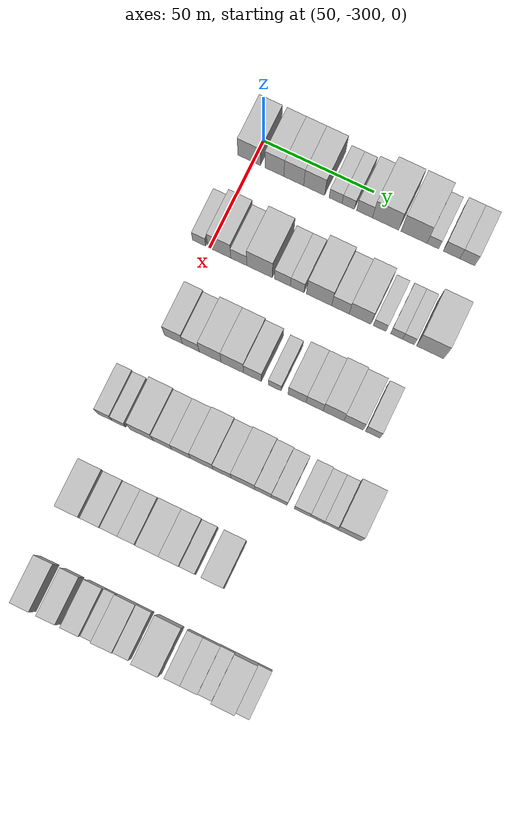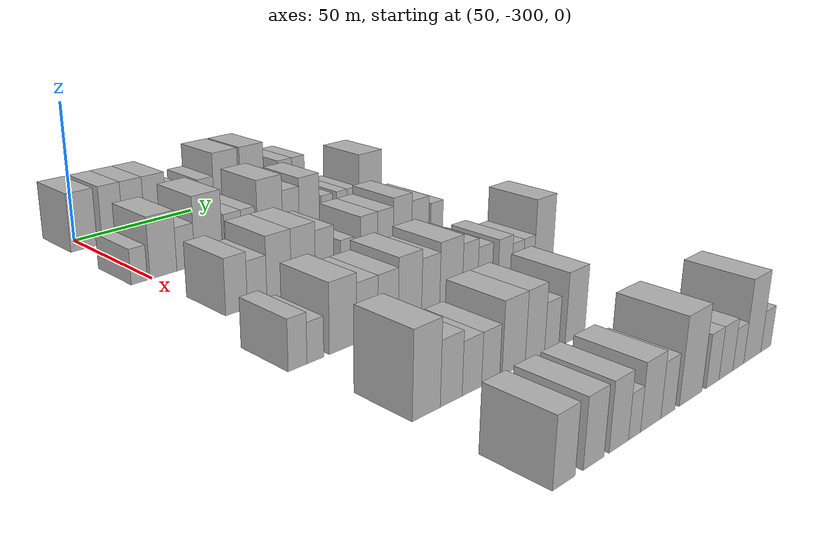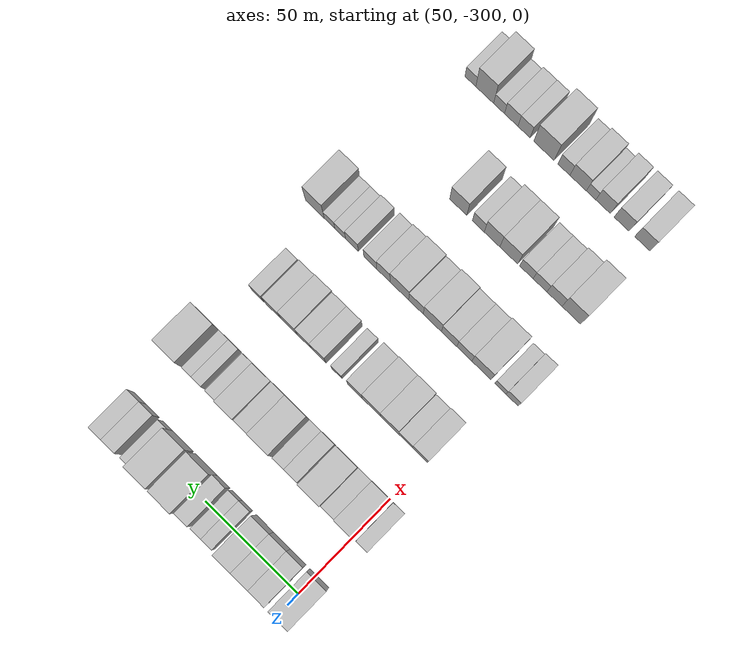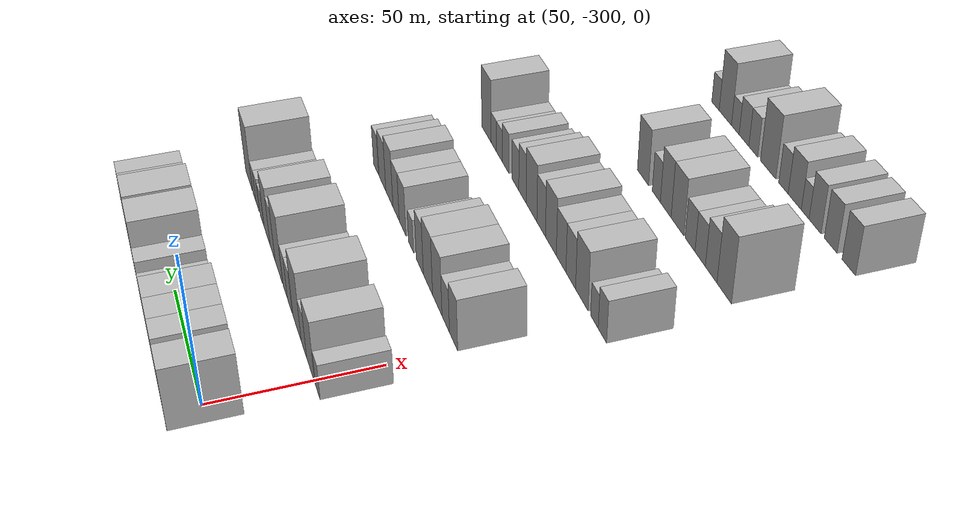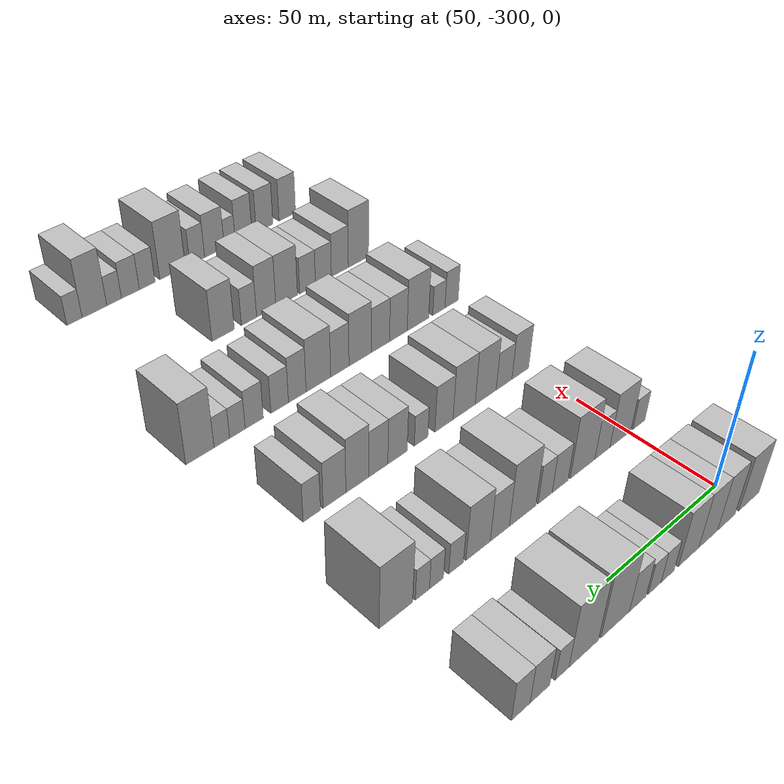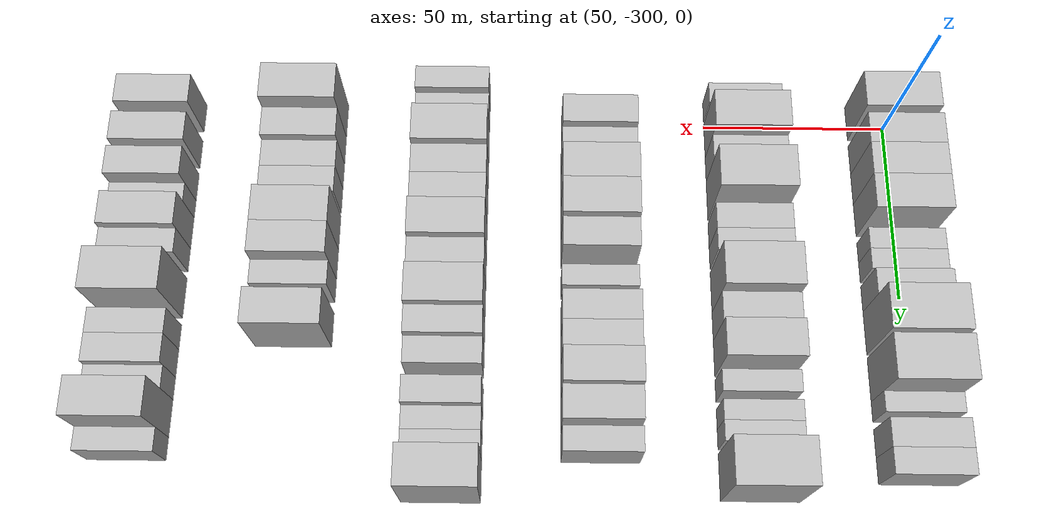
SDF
<sdf version="1.6">
 <world name="default">
  <model name="building_38">
   <static>1</static>
   <pose>50.0000 -301.6341 0 0.000000 0.000000 0.000000</pose>
   <link name="link">
    <pose>0 0 10.50 0 0 0</pose>
    <collision name="collision"><geometry><box><size>20.0000 10.1878 21.0000</size></box></geometry></collision>
    <visual name="visual">
     <cast_shadows>0</cast_shadows>
     <geometry><box><size>20.0000 10.1878 21.0000</size></box></geometry>
     <material>
      <script>
       <uri>model://HANNAS_wall/materials/scripts</uri>
       <uri>model://HANNAS_wall/materials/textures</uri>
       <name>vrc/HANNAS_wall</name>
      </script>
     </material>
    </visual>
   </link>
  </model>
  <model name="building_39">
   <static>1</static>
   <pose>50.0000 -290.2764 0 0.000000 0.000000 0.000000</pose>
   <link name="link">
    <pose>0 0 10.50 0 0 0</pose>
    <collision name="collision"><geometry><box><size>20.0000 8.5275 21.0000</size></box></geometry></collision>
    <visual name="visual">
     <cast_shadows>0</cast_shadows>
     <geometry><box><size>20.0000 8.5275 21.0000</size></box></geometry>
     <material>
      <script>
       <uri>model://HANNAS_wall/materials/scripts</uri>
       <uri>model://HANNAS_wall/materials/textures</uri>
       <name>vrc/HANNAS_wall</name>
      </script>
     </material>
    </visual>
   </link>
  </model>
  <model name="building_40">
   <static>1</static>
   <pose>50.0000 -281.5278 0 0.000000 0.000000 0.000000</pose>
   <link name="link">
    <pose>0 0 10.50 0 0 0</pose>
    <collision name="collision"><geometry><box><size>20.0000 8.9697 21.0000</size></box></geometry></collision>
    <visual name="visual">
     <cast_shadows>0</cast_shadows>
     <geometry><box><size>20.0000 8.9697 21.0000</size></box></geometry>
     <material>
      <script>
       <uri>model://HANNAS_wall/materials/scripts</uri>
       <uri>model://HANNAS_wall/materials/textures</uri>
       <name>vrc/HANNAS_wall</name>
      </script>
     </material>
    </visual>
   </link>
  </model>
  <model name="building_41">
   <static>1</static>
   <pose>50.0000 -272.3328 0 0.000000 0.000000 0.000000</pose>
   <link name="link">
    <pose>0 0 10.50 0 0 0</pose>
    <collision name="collision"><geometry><box><size>20.0000 9.4203 21.0000</size></box></geometry></collision>
    <visual name="visual">
     <cast_shadows>0</cast_shadows>
     <geometry><box><size>20.0000 9.4203 21.0000</size></box></geometry>
     <material>
      <script>
       <uri>model://HANNAS_wall/materials/scripts</uri>
       <uri>model://HANNAS_wall/materials/textures</uri>
       <name>vrc/HANNAS_wall</name>
      </script>
     </material>
    </visual>
   </link>
  </model>
  <model name="building_42">
   <static>1</static>
   <pose>50.0000 -262.7251 0 0.000000 0.000000 0.000000</pose>
   <link name="link">
    <pose>0 0 6.00 0 0 0</pose>
    <collision name="collision"><geometry><box><size>20.0000 5.7952 12.0000</size></box></geometry></collision>
    <visual name="visual">
     <cast_shadows>0</cast_shadows>
     <geometry><box><size>20.0000 5.7952 12.0000</size></box></geometry>
     <material>
      <script>
       <uri>model://HANNAS_wall/materials/scripts</uri>
       <uri>model://HANNAS_wall/materials/textures</uri>
       <name>vrc/HANNAS_wall</name>
      </script>
     </material>
    </visual>
   </link>
  </model>
  <model name="building_43">
   <static>1</static>
   <pose>50.0000 -257.0356 0 0.000000 0.000000 0.000000</pose>
   <link name="link">
    <pose>0 0 6.00 0 0 0</pose>
    <collision name="collision"><geometry><box><size>20.0000 5.5838 12.0000</size></box></geometry></collision>
    <visual name="visual">
     <cast_shadows>0</cast_shadows>
     <geometry><box><size>20.0000 5.5838 12.0000</size></box></geometry>
     <material>
      <script>
       <uri>model://HANNAS_wall/materials/scripts</uri>
       <uri>model://HANNAS_wall/materials/textures</uri>
       <name>vrc/HANNAS_wall</name>
      </script>
     </material>
    </visual>
   </link>
  </model>
  <model name="building_44">
   <static>1</static>
   <pose>50.0000 -249.7115 0 0.000000 0.000000 0.000000</pose>
   <link name="link">
    <pose>0 0 7.50 0 0 0</pose>
    <collision name="collision"><geometry><box><size>20.0000 7.0644 15.0000</size></box></geometry></collision>
    <visual name="visual">
     <cast_shadows>0</cast_shadows>
     <geometry><box><size>20.0000 7.0644 15.0000</size></box></geometry>
     <material>
      <script>
       <uri>model://HANNAS_wall/materials/scripts</uri>
       <uri>model://HANNAS_wall/materials/textures</uri>
       <name>vrc/HANNAS_wall</name>
      </script>
     </material>
    </visual>
   </link>
  </model>
  <model name="building_45">
   <static>1</static>
   <pose>50.0000 -240.2872 0 0.000000 0.000000 0.000000</pose>
   <link name="link">
    <pose>0 0 12.00 0 0 0</pose>
    <collision name="collision"><geometry><box><size>20.0000 11.7841 24.0000</size></box></geometry></collision>
    <visual name="visual">
     <cast_shadows>0</cast_shadows>
     <geometry><box><size>20.0000 11.7841 24.0000</size></box></geometry>
     <material>
      <script>
       <uri>model://HANNAS_wall/materials/scripts</uri>
       <uri>model://HANNAS_wall/materials/textures</uri>
       <name>vrc/HANNAS_wall</name>
      </script>
     </material>
    </visual>
   </link>
  </model>
  <model name="building_46">
   <static>1</static>
   <pose>50.0000 -227.5945 0 0.000000 0.000000 0.000000</pose>
   <link name="link">
    <pose>0 0 12.00 0 0 0</pose>
    <collision name="collision"><geometry><box><size>20.0000 11.6014 24.0000</size></box></geometry></collision>
    <visual name="visual">
     <cast_shadows>0</cast_shadows>
     <geometry><box><size>20.0000 11.6014 24.0000</size></box></geometry>
     <material>
      <script>
       <uri>model://HANNAS_wall/materials/scripts</uri>
       <uri>model://HANNAS_wall/materials/textures</uri>
       <name>vrc/HANNAS_wall</name>
      </script>
     </material>
    </visual>
   </link>
  </model>
  <model name="building_47">
   <static>1</static>
   <pose>50.0000 -219.1614 0 0.000000 0.000000 0.000000</pose>
   <link name="link">
    <pose>0 0 6.00 0 0 0</pose>
    <collision name="collision"><geometry><box><size>20.0000 5.2647 12.0000</size></box></geometry></collision>
    <visual name="visual">
     <cast_shadows>0</cast_shadows>
     <geometry><box><size>20.0000 5.2647 12.0000</size></box></geometry>
     <material>
      <script>
       <uri>model://HANNAS_wall/materials/scripts</uri>
       <uri>model://HANNAS_wall/materials/textures</uri>
       <name>vrc/HANNAS_wall</name>
      </script>
     </material>
    </visual>
   </link>
  </model>
  <model name="building_48">
   <static>1</static>
   <pose>50.0000 -210.8705 0 0.000000 0.000000 0.000000</pose>
   <link name="link">
    <pose>0 0 7.50 0 0 0</pose>
    <collision name="collision"><geometry><box><size>20.0000 7.3172 15.0000</size></box></geometry></collision>
    <visual name="visual">
     <cast_shadows>0</cast_shadows>
     <geometry><box><size>20.0000 7.3172 15.0000</size></box></geometry>
     <material>
      <script>
       <uri>model://HANNAS_wall/materials/scripts</uri>
       <uri>model://HANNAS_wall/materials/textures</uri>
       <name>vrc/HANNAS_wall</name>
      </script>
     </material>
    </visual>
   </link>
  </model>
  <model name="building_49">
   <static>1</static>
   <pose>50.0000 -203.8692 0 0.000000 0.000000 0.000000</pose>
   <link name="link">
    <pose>0 0 7.50 0 0 0</pose>
    <collision name="collision"><geometry><box><size>20.0000 6.6853 15.0000</size></box></geometry></collision>
    <visual name="visual">
     <cast_shadows>0</cast_shadows>
     <geometry><box><size>20.0000 6.6853 15.0000</size></box></geometry>
     <material>
      <script>
       <uri>model://HANNAS_wall/materials/scripts</uri>
       <uri>model://HANNAS_wall/materials/textures</uri>
       <name>vrc/HANNAS_wall</name>
      </script>
     </material>
    </visual>
   </link>
  </model>
  <model name="building_174">
   <static>1</static>
   <pose>90.0000 -304.6852 0 0.000000 0.000000 0.000000</pose>
   <link name="link">
    <pose>0 0 6.00 0 0 0</pose>
    <collision name="collision"><geometry><box><size>20.0000 5.9500 12.0000</size></box></geometry></collision>
    <visual name="visual">
     <cast_shadows>0</cast_shadows>
     <geometry><box><size>20.0000 5.9500 12.0000</size></box></geometry>
     <material>
      <script>
       <uri>model://HANNAS_wall/materials/scripts</uri>
       <uri>model://HANNAS_wall/materials/textures</uri>
       <name>vrc/HANNAS_wall</name>
      </script>
     </material>
    </visual>
   </link>
  </model>
  <model name="building_175">
   <static>1</static>
   <pose>90.0000 -295.5794 0 0.000000 0.000000 0.000000</pose>
   <link name="link">
    <pose>0 0 10.50 0 0 0</pose>
    <collision name="collision"><geometry><box><size>20.0000 10.2616 21.0000</size></box></geometry></collision>
    <visual name="visual">
     <cast_shadows>0</cast_shadows>
     <geometry><box><size>20.0000 10.2616 21.0000</size></box></geometry>
     <material>
      <script>
       <uri>model://HANNAS_wall/materials/scripts</uri>
       <uri>model://HANNAS_wall/materials/textures</uri>
       <name>vrc/HANNAS_wall</name>
      </script>
     </material>
    </visual>
   </link>
  </model>
  <model name="building_176">
   <static>1</static>
   <pose>90.0000 -286.8788 0 0.000000 0.000000 0.000000</pose>
   <link name="link">
    <pose>0 0 7.50 0 0 0</pose>
    <collision name="collision"><geometry><box><size>20.0000 7.1395 15.0000</size></box></geometry></collision>
    <visual name="visual">
     <cast_shadows>0</cast_shadows>
     <geometry><box><size>20.0000 7.1395 15.0000</size></box></geometry>
     <material>
      <script>
       <uri>model://HANNAS_wall/materials/scripts</uri>
       <uri>model://HANNAS_wall/materials/textures</uri>
       <name>vrc/HANNAS_wall</name>
      </script>
     </material>
    </visual>
   </link>
  </model>
  <model name="building_177">
   <static>1</static>
   <pose>90.0000 -277.6063 0 0.000000 0.000000 0.000000</pose>
   <link name="link">
    <pose>0 0 12.00 0 0 0</pose>
    <collision name="collision"><geometry><box><size>20.0000 11.4056 24.0000</size></box></geometry></collision>
    <visual name="visual">
     <cast_shadows>0</cast_shadows>
     <geometry><box><size>20.0000 11.4056 24.0000</size></box></geometry>
     <material>
      <script>
       <uri>model://HANNAS_wall/materials/scripts</uri>
       <uri>model://HANNAS_wall/materials/textures</uri>
       <name>vrc/HANNAS_wall</name>
      </script>
     </material>
    </visual>
   </link>
  </model>
  <model name="building_178">
   <static>1</static>
   <pose>90.0000 -267.3664 0 0.000000 0.000000 0.000000</pose>
   <link name="link">
    <pose>0 0 7.50 0 0 0</pose>
    <collision name="collision"><geometry><box><size>20.0000 7.0742 15.0000</size></box></geometry></collision>
    <visual name="visual">
     <cast_shadows>0</cast_shadows>
     <geometry><box><size>20.0000 7.0742 15.0000</size></box></geometry>
     <material>
      <script>
       <uri>model://HANNAS_wall/materials/scripts</uri>
       <uri>model://HANNAS_wall/materials/textures</uri>
       <name>vrc/HANNAS_wall</name>
      </script>
     </material>
    </visual>
   </link>
  </model>
  <model name="building_179">
   <static>1</static>
   <pose>90.0000 -260.7672 0 0.000000 0.000000 0.000000</pose>
   <link name="link">
    <pose>0 0 7.50 0 0 0</pose>
    <collision name="collision"><geometry><box><size>20.0000 6.1242 15.0000</size></box></geometry></collision>
    <visual name="visual">
     <cast_shadows>0</cast_shadows>
     <geometry><box><size>20.0000 6.1242 15.0000</size></box></geometry>
     <material>
      <script>
       <uri>model://HANNAS_wall/materials/scripts</uri>
       <uri>model://HANNAS_wall/materials/textures</uri>
       <name>vrc/HANNAS_wall</name>
      </script>
     </material>
    </visual>
   </link>
  </model>
  <model name="building_180">
   <static>1</static>
   <pose>90.0000 -251.0850 0 0.000000 0.000000 0.000000</pose>
   <link name="link">
    <pose>0 0 12.00 0 0 0</pose>
    <collision name="collision"><geometry><box><size>20.0000 11.2403 24.0000</size></box></geometry></collision>
    <visual name="visual">
     <cast_shadows>0</cast_shadows>
     <geometry><box><size>20.0000 11.2403 24.0000</size></box></geometry>
     <material>
      <script>
       <uri>model://HANNAS_wall/materials/scripts</uri>
       <uri>model://HANNAS_wall/materials/textures</uri>
       <name>vrc/HANNAS_wall</name>
      </script>
     </material>
    </visual>
   </link>
  </model>
  <model name="building_181">
   <static>1</static>
   <pose>90.0000 -241.5781 0 0.000000 0.000000 0.000000</pose>
   <link name="link">
    <pose>0 0 9.00 0 0 0</pose>
    <collision name="collision"><geometry><box><size>20.0000 7.7735 18.0000</size></box></geometry></collision>
    <visual name="visual">
     <cast_shadows>0</cast_shadows>
     <geometry><box><size>20.0000 7.7735 18.0000</size></box></geometry>
     <material>
      <script>
       <uri>model://HANNAS_wall/materials/scripts</uri>
       <uri>model://HANNAS_wall/materials/textures</uri>
       <name>vrc/HANNAS_wall</name>
      </script>
     </material>
    </visual>
   </link>
  </model>
  <model name="building_182">
   <static>1</static>
   <pose>90.0000 -232.8394 0 0.000000 0.000000 0.000000</pose>
   <link name="link">
    <pose>0 0 10.50 0 0 0</pose>
    <collision name="collision"><geometry><box><size>20.0000 9.7039 21.0000</size></box></geometry></collision>
    <visual name="visual">
     <cast_shadows>0</cast_shadows>
     <geometry><box><size>20.0000 9.7039 21.0000</size></box></geometry>
     <material>
      <script>
       <uri>model://HANNAS_wall/materials/scripts</uri>
       <uri>model://HANNAS_wall/materials/textures</uri>
       <name>vrc/HANNAS_wall</name>
      </script>
     </material>
    </visual>
   </link>
  </model>
  <model name="building_183">
   <static>1</static>
   <pose>90.0000 -224.1517 0 0.000000 0.000000 0.000000</pose>
   <link name="link">
    <pose>0 0 6.00 0 0 0</pose>
    <collision name="collision"><geometry><box><size>20.0000 5.6714 12.0000</size></box></geometry></collision>
    <visual name="visual">
     <cast_shadows>0</cast_shadows>
     <geometry><box><size>20.0000 5.6714 12.0000</size></box></geometry>
     <material>
      <script>
       <uri>model://HANNAS_wall/materials/scripts</uri>
       <uri>model://HANNAS_wall/materials/textures</uri>
       <name>vrc/HANNAS_wall</name>
      </script>
     </material>
    </visual>
   </link>
  </model>
  <model name="building_184">
   <static>1</static>
   <pose>90.0000 -216.6752 0 0.000000 0.000000 0.000000</pose>
   <link name="link">
    <pose>0 0 6.00 0 0 0</pose>
    <collision name="collision"><geometry><box><size>20.0000 5.2816 12.0000</size></box></geometry></collision>
    <visual name="visual">
     <cast_shadows>0</cast_shadows>
     <geometry><box><size>20.0000 5.2816 12.0000</size></box></geometry>
     <material>
      <script>
       <uri>model://HANNAS_wall/materials/scripts</uri>
       <uri>model://HANNAS_wall/materials/textures</uri>
       <name>vrc/HANNAS_wall</name>
      </script>
     </material>
    </visual>
   </link>
  </model>
  <model name="building_185">
   <static>1</static>
   <pose>90.0000 -211.4348 0 0.000000 0.000000 0.000000</pose>
   <link name="link">
    <pose>0 0 6.00 0 0 0</pose>
    <collision name="collision"><geometry><box><size>20.0000 5.1991 12.0000</size></box></geometry></collision>
    <visual name="visual">
     <cast_shadows>0</cast_shadows>
     <geometry><box><size>20.0000 5.1991 12.0000</size></box></geometry>
     <material>
      <script>
       <uri>model://HANNAS_wall/materials/scripts</uri>
       <uri>model://HANNAS_wall/materials/textures</uri>
       <name>vrc/HANNAS_wall</name>
      </script>
     </material>
    </visual>
   </link>
  </model>
  <model name="building_186">
   <static>1</static>
   <pose>90.0000 -201.8557 0 0.000000 0.000000 0.000000</pose>
   <link name="link">
    <pose>0 0 12.00 0 0 0</pose>
    <collision name="collision"><geometry><box><size>20.0000 11.9591 24.0000</size></box></geometry></collision>
    <visual name="visual">
     <cast_shadows>0</cast_shadows>
     <geometry><box><size>20.0000 11.9591 24.0000</size></box></geometry>
     <material>
      <script>
       <uri>model://HANNAS_wall/materials/scripts</uri>
       <uri>model://HANNAS_wall/materials/textures</uri>
       <name>vrc/HANNAS_wall</name>
      </script>
     </material>
    </visual>
   </link>
  </model>
  <model name="building_315">
   <static>1</static>
   <pose>130.0000 -296.4589 0 0.000000 0.000000 0.000000</pose>
   <link name="link">
    <pose>0 0 9.00 0 0 0</pose>
    <collision name="collision"><geometry><box><size>20.0000 8.0401 18.0000</size></box></geometry></collision>
    <visual name="visual">
     <cast_shadows>0</cast_shadows>
     <geometry><box><size>20.0000 8.0401 18.0000</size></box></geometry>
     <material>
      <script>
       <uri>model://HANNAS_wall/materials/scripts</uri>
       <uri>model://HANNAS_wall/materials/textures</uri>
       <name>vrc/HANNAS_wall</name>
      </script>
     </material>
    </visual>
   </link>
  </model>
  <model name="building_316">
   <static>1</static>
   <pose>130.0000 -288.7097 0 0.000000 0.000000 0.000000</pose>
   <link name="link">
    <pose>0 0 7.50 0 0 0</pose>
    <collision name="collision"><geometry><box><size>20.0000 7.4584 15.0000</size></box></geometry></collision>
    <visual name="visual">
     <cast_shadows>0</cast_shadows>
     <geometry><box><size>20.0000 7.4584 15.0000</size></box></geometry>
     <material>
      <script>
       <uri>model://HANNAS_wall/materials/scripts</uri>
       <uri>model://HANNAS_wall/materials/textures</uri>
       <name>vrc/HANNAS_wall</name>
      </script>
     </material>
    </visual>
   </link>
  </model>
  <model name="building_317">
   <static>1</static>
   <pose>130.0000 -280.1186 0 0.000000 0.000000 0.000000</pose>
   <link name="link">
    <pose>0 0 10.50 0 0 0</pose>
    <collision name="collision"><geometry><box><size>20.0000 9.7237 21.0000</size></box></geometry></collision>
    <visual name="visual">
     <cast_shadows>0</cast_shadows>
     <geometry><box><size>20.0000 9.7237 21.0000</size></box></geometry>
     <material>
      <script>
       <uri>model://HANNAS_wall/materials/scripts</uri>
       <uri>model://HANNAS_wall/materials/textures</uri>
       <name>vrc/HANNAS_wall</name>
      </script>
     </material>
    </visual>
   </link>
  </model>
  <model name="building_318">
   <static>1</static>
   <pose>130.0000 -270.2949 0 0.000000 0.000000 0.000000</pose>
   <link name="link">
    <pose>0 0 10.50 0 0 0</pose>
    <collision name="collision"><geometry><box><size>20.0000 9.9236 21.0000</size></box></geometry></collision>
    <visual name="visual">
     <cast_shadows>0</cast_shadows>
     <geometry><box><size>20.0000 9.9236 21.0000</size></box></geometry>
     <material>
      <script>
       <uri>model://HANNAS_wall/materials/scripts</uri>
       <uri>model://HANNAS_wall/materials/textures</uri>
       <name>vrc/HANNAS_wall</name>
      </script>
     </material>
    </visual>
   </link>
  </model>
  <model name="building_319">
   <static>1</static>
   <pose>130.0000 -261.3766 0 0.000000 0.000000 0.000000</pose>
   <link name="link">
    <pose>0 0 9.00 0 0 0</pose>
    <collision name="collision"><geometry><box><size>20.0000 7.9131 18.0000</size></box></geometry></collision>
    <visual name="visual">
     <cast_shadows>0</cast_shadows>
     <geometry><box><size>20.0000 7.9131 18.0000</size></box></geometry>
     <material>
      <script>
       <uri>model://HANNAS_wall/materials/scripts</uri>
       <uri>model://HANNAS_wall/materials/textures</uri>
       <name>vrc/HANNAS_wall</name>
      </script>
     </material>
    </visual>
   </link>
  </model>
  <model name="building_320">
   <static>1</static>
   <pose>130.0000 -251.5529 0 0.000000 0.000000 0.000000</pose>
   <link name="link">
    <pose>0 0 6.00 0 0 0</pose>
    <collision name="collision"><geometry><box><size>20.0000 5.7344 12.0000</size></box></geometry></collision>
    <visual name="visual">
     <cast_shadows>0</cast_shadows>
     <geometry><box><size>20.0000 5.7344 12.0000</size></box></geometry>
     <material>
      <script>
       <uri>model://HANNAS_wall/materials/scripts</uri>
       <uri>model://HANNAS_wall/materials/textures</uri>
       <name>vrc/HANNAS_wall</name>
      </script>
     </material>
    </visual>
   </link>
  </model>
  <model name="building_321">
   <static>1</static>
   <pose>130.0000 -241.7165 0 0.000000 0.000000 0.000000</pose>
   <link name="link">
    <pose>0 0 9.00 0 0 0</pose>
    <collision name="collision"><geometry><box><size>20.0000 7.9384 18.0000</size></box></geometry></collision>
    <visual name="visual">
     <cast_shadows>0</cast_shadows>
     <geometry><box><size>20.0000 7.9384 18.0000</size></box></geometry>
     <material>
      <script>
       <uri>model://HANNAS_wall/materials/scripts</uri>
       <uri>model://HANNAS_wall/materials/textures</uri>
       <name>vrc/HANNAS_wall</name>
      </script>
     </material>
    </visual>
   </link>
  </model>
  <model name="building_322">
   <static>1</static>
   <pose>130.0000 -233.9458 0 0.000000 0.000000 0.000000</pose>
   <link name="link">
    <pose>0 0 9.00 0 0 0</pose>
    <collision name="collision"><geometry><box><size>20.0000 7.6030 18.0000</size></box></geometry></collision>
    <visual name="visual">
     <cast_shadows>0</cast_shadows>
     <geometry><box><size>20.0000 7.6030 18.0000</size></box></geometry>
     <material>
      <script>
       <uri>model://HANNAS_wall/materials/scripts</uri>
       <uri>model://HANNAS_wall/materials/textures</uri>
       <name>vrc/HANNAS_wall</name>
      </script>
     </material>
    </visual>
   </link>
  </model>
  <model name="building_323">
   <static>1</static>
   <pose>130.0000 -225.6575 0 0.000000 0.000000 0.000000</pose>
   <link name="link">
    <pose>0 0 10.50 0 0 0</pose>
    <collision name="collision"><geometry><box><size>20.0000 8.9736 21.0000</size></box></geometry></collision>
    <visual name="visual">
     <cast_shadows>0</cast_shadows>
     <geometry><box><size>20.0000 8.9736 21.0000</size></box></geometry>
     <material>
      <script>
       <uri>model://HANNAS_wall/materials/scripts</uri>
       <uri>model://HANNAS_wall/materials/textures</uri>
       <name>vrc/HANNAS_wall</name>
      </script>
     </material>
    </visual>
   </link>
  </model>
  <model name="building_324">
   <static>1</static>
   <pose>130.0000 -216.8677 0 0.000000 0.000000 0.000000</pose>
   <link name="link">
    <pose>0 0 9.00 0 0 0</pose>
    <collision name="collision"><geometry><box><size>20.0000 8.6060 18.0000</size></box></geometry></collision>
    <visual name="visual">
     <cast_shadows>0</cast_shadows>
     <geometry><box><size>20.0000 8.6060 18.0000</size></box></geometry>
     <material>
      <script>
       <uri>model://HANNAS_wall/materials/scripts</uri>
       <uri>model://HANNAS_wall/materials/textures</uri>
       <name>vrc/HANNAS_wall</name>
      </script>
     </material>
    </visual>
   </link>
  </model>
  <model name="building_325">
   <static>1</static>
   <pose>130.0000 -208.3729 0 0.000000 0.000000 0.000000</pose>
   <link name="link">
    <pose>0 0 7.50 0 0 0</pose>
    <collision name="collision"><geometry><box><size>20.0000 6.3836 15.0000</size></box></geometry></collision>
    <visual name="visual">
     <cast_shadows>0</cast_shadows>
     <geometry><box><size>20.0000 6.3836 15.0000</size></box></geometry>
     <material>
      <script>
       <uri>model://HANNAS_wall/materials/scripts</uri>
       <uri>model://HANNAS_wall/materials/textures</uri>
       <name>vrc/HANNAS_wall</name>
      </script>
     </material>
    </visual>
   </link>
  </model>
  <model name="building_455">
   <static>1</static>
   <pose>170.0000 -306.9738 0 0.000000 0.000000 0.000000</pose>
   <link name="link">
    <pose>0 0 7.50 0 0 0</pose>
    <collision name="collision"><geometry><box><size>20.0000 6.4906 15.0000</size></box></geometry></collision>
    <visual name="visual">
     <cast_shadows>0</cast_shadows>
     <geometry><box><size>20.0000 6.4906 15.0000</size></box></geometry>
     <material>
      <script>
       <uri>model://HANNAS_wall/materials/scripts</uri>
       <uri>model://HANNAS_wall/materials/textures</uri>
       <name>vrc/HANNAS_wall</name>
      </script>
     </material>
    </visual>
   </link>
  </model>
  <model name="building_456">
   <static>1</static>
   <pose>170.0000 -300.7333 0 0.000000 0.000000 0.000000</pose>
   <link name="link">
    <pose>0 0 6.00 0 0 0</pose>
    <collision name="collision"><geometry><box><size>20.0000 5.9905 12.0000</size></box></geometry></collision>
    <visual name="visual">
     <cast_shadows>0</cast_shadows>
     <geometry><box><size>20.0000 5.9905 12.0000</size></box></geometry>
     <material>
      <script>
       <uri>model://HANNAS_wall/materials/scripts</uri>
       <uri>model://HANNAS_wall/materials/textures</uri>
       <name>vrc/HANNAS_wall</name>
      </script>
     </material>
    </visual>
   </link>
  </model>
  <model name="building_457">
   <static>1</static>
   <pose>170.0000 -290.6164 0 0.000000 0.000000 0.000000</pose>
   <link name="link">
    <pose>0 0 10.50 0 0 0</pose>
    <collision name="collision"><geometry><box><size>20.0000 10.2432 21.0000</size></box></geometry></collision>
    <visual name="visual">
     <cast_shadows>0</cast_shadows>
     <geometry><box><size>20.0000 10.2432 21.0000</size></box></geometry>
     <material>
      <script>
       <uri>model://HANNAS_wall/materials/scripts</uri>
       <uri>model://HANNAS_wall/materials/textures</uri>
       <name>vrc/HANNAS_wall</name>
      </script>
     </material>
    </visual>
   </link>
  </model>
  <model name="building_458">
   <static>1</static>
   <pose>170.0000 -281.4173 0 0.000000 0.000000 0.000000</pose>
   <link name="link">
    <pose>0 0 9.00 0 0 0</pose>
    <collision name="collision"><geometry><box><size>20.0000 8.1549 18.0000</size></box></geometry></collision>
    <visual name="visual">
     <cast_shadows>0</cast_shadows>
     <geometry><box><size>20.0000 8.1549 18.0000</size></box></geometry>
     <material>
      <script>
       <uri>model://HANNAS_wall/materials/scripts</uri>
       <uri>model://HANNAS_wall/materials/textures</uri>
       <name>vrc/HANNAS_wall</name>
      </script>
     </material>
    </visual>
   </link>
  </model>
  <model name="building_459">
   <static>1</static>
   <pose>170.0000 -273.1754 0 0.000000 0.000000 0.000000</pose>
   <link name="link">
    <pose>0 0 9.00 0 0 0</pose>
    <collision name="collision"><geometry><box><size>20.0000 8.3290 18.0000</size></box></geometry></collision>
    <visual name="visual">
     <cast_shadows>0</cast_shadows>
     <geometry><box><size>20.0000 8.3290 18.0000</size></box></geometry>
     <material>
      <script>
       <uri>model://HANNAS_wall/materials/scripts</uri>
       <uri>model://HANNAS_wall/materials/textures</uri>
       <name>vrc/HANNAS_wall</name>
      </script>
     </material>
    </visual>
   </link>
  </model>
  <model name="building_460">
   <static>1</static>
   <pose>170.0000 -264.1014 0 0.000000 0.000000 0.000000</pose>
   <link name="link">
    <pose>0 0 10.50 0 0 0</pose>
    <collision name="collision"><geometry><box><size>20.0000 9.8189 21.0000</size></box></geometry></collision>
    <visual name="visual">
     <cast_shadows>0</cast_shadows>
     <geometry><box><size>20.0000 9.8189 21.0000</size></box></geometry>
     <material>
      <script>
       <uri>model://HANNAS_wall/materials/scripts</uri>
       <uri>model://HANNAS_wall/materials/textures</uri>
       <name>vrc/HANNAS_wall</name>
      </script>
     </material>
    </visual>
   </link>
  </model>
  <model name="building_461">
   <static>1</static>
   <pose>170.0000 -255.2435 0 0.000000 0.000000 0.000000</pose>
   <link name="link">
    <pose>0 0 9.00 0 0 0</pose>
    <collision name="collision"><geometry><box><size>20.0000 7.8969 18.0000</size></box></geometry></collision>
    <visual name="visual">
     <cast_shadows>0</cast_shadows>
     <geometry><box><size>20.0000 7.8969 18.0000</size></box></geometry>
     <material>
      <script>
       <uri>model://HANNAS_wall/materials/scripts</uri>
       <uri>model://HANNAS_wall/materials/textures</uri>
       <name>vrc/HANNAS_wall</name>
      </script>
     </material>
    </visual>
   </link>
  </model>
  <model name="building_462">
   <static>1</static>
   <pose>170.0000 -246.1654 0 0.000000 0.000000 0.000000</pose>
   <link name="link">
    <pose>0 0 10.50 0 0 0</pose>
    <collision name="collision"><geometry><box><size>20.0000 10.2593 21.0000</size></box></geometry></collision>
    <visual name="visual">
     <cast_shadows>0</cast_shadows>
     <geometry><box><size>20.0000 10.2593 21.0000</size></box></geometry>
     <material>
      <script>
       <uri>model://HANNAS_wall/materials/scripts</uri>
       <uri>model://HANNAS_wall/materials/textures</uri>
       <name>vrc/HANNAS_wall</name>
      </script>
     </material>
    </visual>
   </link>
  </model>
  <model name="building_463">
   <static>1</static>
   <pose>170.0000 -237.4197 0 0.000000 0.000000 0.000000</pose>
   <link name="link">
    <pose>0 0 9.00 0 0 0</pose>
    <collision name="collision"><geometry><box><size>20.0000 7.2321 18.0000</size></box></geometry></collision>
    <visual name="visual">
     <cast_shadows>0</cast_shadows>
     <geometry><box><size>20.0000 7.2321 18.0000</size></box></geometry>
     <material>
      <script>
       <uri>model://HANNAS_wall/materials/scripts</uri>
       <uri>model://HANNAS_wall/materials/textures</uri>
       <name>vrc/HANNAS_wall</name>
      </script>
     </material>
    </visual>
   </link>
  </model>
  <model name="building_464">
   <static>1</static>
   <pose>170.0000 -230.2940 0 0.000000 0.000000 0.000000</pose>
   <link name="link">
    <pose>0 0 7.50 0 0 0</pose>
    <collision name="collision"><geometry><box><size>20.0000 7.0192 15.0000</size></box></geometry></collision>
    <visual name="visual">
     <cast_shadows>0</cast_shadows>
     <geometry><box><size>20.0000 7.0192 15.0000</size></box></geometry>
     <material>
      <script>
       <uri>model://HANNAS_wall/materials/scripts</uri>
       <uri>model://HANNAS_wall/materials/textures</uri>
       <name>vrc/HANNAS_wall</name>
      </script>
     </material>
    </visual>
   </link>
  </model>
  <model name="building_465">
   <static>1</static>
   <pose>170.0000 -220.2733 0 0.000000 0.000000 0.000000</pose>
   <link name="link">
    <pose>0 0 7.50 0 0 0</pose>
    <collision name="collision"><geometry><box><size>20.0000 7.0222 15.0000</size></box></geometry></collision>
    <visual name="visual">
     <cast_shadows>0</cast_shadows>
     <geometry><box><size>20.0000 7.0222 15.0000</size></box></geometry>
     <material>
      <script>
       <uri>model://HANNAS_wall/materials/scripts</uri>
       <uri>model://HANNAS_wall/materials/textures</uri>
       <name>vrc/HANNAS_wall</name>
      </script>
     </material>
    </visual>
   </link>
  </model>
  <model name="building_466">
   <static>1</static>
   <pose>170.0000 -213.7889 0 0.000000 0.000000 0.000000</pose>
   <link name="link">
    <pose>0 0 6.00 0 0 0</pose>
    <collision name="collision"><geometry><box><size>20.0000 5.9466 12.0000</size></box></geometry></collision>
    <visual name="visual">
     <cast_shadows>0</cast_shadows>
     <geometry><box><size>20.0000 5.9466 12.0000</size></box></geometry>
     <material>
      <script>
       <uri>model://HANNAS_wall/materials/scripts</uri>
       <uri>model://HANNAS_wall/materials/textures</uri>
       <name>vrc/HANNAS_wall</name>
      </script>
     </material>
    </visual>
   </link>
  </model>
  <model name="building_467">
   <static>1</static>
   <pose>170.0000 -207.9164 0 0.000000 0.000000 0.000000</pose>
   <link name="link">
    <pose>0 0 6.00 0 0 0</pose>
    <collision name="collision"><geometry><box><size>20.0000 5.7985 12.0000</size></box></geometry></collision>
    <visual name="visual">
     <cast_shadows>0</cast_shadows>
     <geometry><box><size>20.0000 5.7985 12.0000</size></box></geometry>
     <material>
      <script>
       <uri>model://HANNAS_wall/materials/scripts</uri>
       <uri>model://HANNAS_wall/materials/textures</uri>
       <name>vrc/HANNAS_wall</name>
      </script>
     </material>
    </visual>
   </link>
  </model>
  <model name="building_468">
   <static>1</static>
   <pose>170.0000 -199.8529 0 0.000000 0.000000 0.000000</pose>
   <link name="link">
    <pose>0 0 12.00 0 0 0</pose>
    <collision name="collision"><geometry><box><size>20.0000 10.3283 24.0000</size></box></geometry></collision>
    <visual name="visual">
     <cast_shadows>0</cast_shadows>
     <geometry><box><size>20.0000 10.3283 24.0000</size></box></geometry>
     <material>
      <script>
       <uri>model://HANNAS_wall/materials/scripts</uri>
       <uri>model://HANNAS_wall/materials/textures</uri>
       <name>vrc/HANNAS_wall</name>
      </script>
     </material>
    </visual>
   </link>
  </model>
  <model name="building_598">
   <static>1</static>
   <pose>210.0000 -300.6121 0 0.000000 0.000000 0.000000</pose>
   <link name="link">
    <pose>0 0 12.00 0 0 0</pose>
    <collision name="collision"><geometry><box><size>20.0000 9.9142 24.0000</size></box></geometry></collision>
    <visual name="visual">
     <cast_shadows>0</cast_shadows>
     <geometry><box><size>20.0000 9.9142 24.0000</size></box></geometry>
     <material>
      <script>
       <uri>model://HANNAS_wall/materials/scripts</uri>
       <uri>model://HANNAS_wall/materials/textures</uri>
       <name>vrc/HANNAS_wall</name>
      </script>
     </material>
    </visual>
   </link>
  </model>
  <model name="building_599">
   <static>1</static>
   <pose>210.0000 -291.5952 0 0.000000 0.000000 0.000000</pose>
   <link name="link">
    <pose>0 0 9.00 0 0 0</pose>
    <collision name="collision"><geometry><box><size>20.0000 8.1195 18.0000</size></box></geometry></collision>
    <visual name="visual">
     <cast_shadows>0</cast_shadows>
     <geometry><box><size>20.0000 8.1195 18.0000</size></box></geometry>
     <material>
      <script>
       <uri>model://HANNAS_wall/materials/scripts</uri>
       <uri>model://HANNAS_wall/materials/textures</uri>
       <name>vrc/HANNAS_wall</name>
      </script>
     </material>
    </visual>
   </link>
  </model>
  <model name="building_600">
   <static>1</static>
   <pose>210.0000 -283.7983 0 0.000000 0.000000 0.000000</pose>
   <link name="link">
    <pose>0 0 7.50 0 0 0</pose>
    <collision name="collision"><geometry><box><size>20.0000 7.4743 15.0000</size></box></geometry></collision>
    <visual name="visual">
     <cast_shadows>0</cast_shadows>
     <geometry><box><size>20.0000 7.4743 15.0000</size></box></geometry>
     <material>
      <script>
       <uri>model://HANNAS_wall/materials/scripts</uri>
       <uri>model://HANNAS_wall/materials/textures</uri>
       <name>vrc/HANNAS_wall</name>
      </script>
     </material>
    </visual>
   </link>
  </model>
  <model name="building_601">
   <static>1</static>
   <pose>210.0000 -276.4348 0 0.000000 0.000000 0.000000</pose>
   <link name="link">
    <pose>0 0 7.50 0 0 0</pose>
    <collision name="collision"><geometry><box><size>20.0000 7.2527 15.0000</size></box></geometry></collision>
    <visual name="visual">
     <cast_shadows>0</cast_shadows>
     <geometry><box><size>20.0000 7.2527 15.0000</size></box></geometry>
     <material>
      <script>
       <uri>model://HANNAS_wall/materials/scripts</uri>
       <uri>model://HANNAS_wall/materials/textures</uri>
       <name>vrc/HANNAS_wall</name>
      </script>
     </material>
    </visual>
   </link>
  </model>
  <model name="building_602">
   <static>1</static>
   <pose>210.0000 -266.9456 0 0.000000 0.000000 0.000000</pose>
   <link name="link">
    <pose>0 0 10.50 0 0 0</pose>
    <collision name="collision"><geometry><box><size>20.0000 9.7256 21.0000</size></box></geometry></collision>
    <visual name="visual">
     <cast_shadows>0</cast_shadows>
     <geometry><box><size>20.0000 9.7256 21.0000</size></box></geometry>
     <material>
      <script>
       <uri>model://HANNAS_wall/materials/scripts</uri>
       <uri>model://HANNAS_wall/materials/textures</uri>
       <name>vrc/HANNAS_wall</name>
      </script>
     </material>
    </visual>
   </link>
  </model>
  <model name="building_603">
   <static>1</static>
   <pose>210.0000 -257.8442 0 0.000000 0.000000 0.000000</pose>
   <link name="link">
    <pose>0 0 10.50 0 0 0</pose>
    <collision name="collision"><geometry><box><size>20.0000 8.4772 21.0000</size></box></geometry></collision>
    <visual name="visual">
     <cast_shadows>0</cast_shadows>
     <geometry><box><size>20.0000 8.4772 21.0000</size></box></geometry>
     <material>
      <script>
       <uri>model://HANNAS_wall/materials/scripts</uri>
       <uri>model://HANNAS_wall/materials/textures</uri>
       <name>vrc/HANNAS_wall</name>
      </script>
     </material>
    </visual>
   </link>
  </model>
  <model name="building_604">
   <static>1</static>
   <pose>210.0000 -250.3451 0 0.000000 0.000000 0.000000</pose>
   <link name="link">
    <pose>0 0 7.50 0 0 0</pose>
    <collision name="collision"><geometry><box><size>20.0000 6.5210 15.0000</size></box></geometry></collision>
    <visual name="visual">
     <cast_shadows>0</cast_shadows>
     <geometry><box><size>20.0000 6.5210 15.0000</size></box></geometry>
     <material>
      <script>
       <uri>model://HANNAS_wall/materials/scripts</uri>
       <uri>model://HANNAS_wall/materials/textures</uri>
       <name>vrc/HANNAS_wall</name>
      </script>
     </material>
    </visual>
   </link>
  </model>
  <model name="building_605">
   <static>1</static>
   <pose>210.0000 -239.4140 0 0.000000 0.000000 0.000000</pose>
   <link name="link">
    <pose>0 0 10.50 0 0 0</pose>
    <collision name="collision"><geometry><box><size>20.0000 9.3412 21.0000</size></box></geometry></collision>
    <visual name="visual">
     <cast_shadows>0</cast_shadows>
     <geometry><box><size>20.0000 9.3412 21.0000</size></box></geometry>
     <material>
      <script>
       <uri>model://HANNAS_wall/materials/scripts</uri>
       <uri>model://HANNAS_wall/materials/textures</uri>
       <name>vrc/HANNAS_wall</name>
      </script>
     </material>
    </visual>
   </link>
  </model>
  <model name="building_739">
   <static>1</static>
   <pose>250.0000 -301.0528 0 0.000000 0.000000 0.000000</pose>
   <link name="link">
    <pose>0 0 9.00 0 0 0</pose>
    <collision name="collision"><geometry><box><size>20.0000 8.1915 18.0000</size></box></geometry></collision>
    <visual name="visual">
     <cast_shadows>0</cast_shadows>
     <geometry><box><size>20.0000 8.1915 18.0000</size></box></geometry>
     <material>
      <script>
       <uri>model://HANNAS_wall/materials/scripts</uri>
       <uri>model://HANNAS_wall/materials/textures</uri>
       <name>vrc/HANNAS_wall</name>
      </script>
     </material>
    </visual>
   </link>
  </model>
  <model name="building_740">
   <static>1</static>
   <pose>250.0000 -289.9209 0 0.000000 0.000000 0.000000</pose>
   <link name="link">
    <pose>0 0 9.00 0 0 0</pose>
    <collision name="collision"><geometry><box><size>20.0000 8.0724 18.0000</size></box></geometry></collision>
    <visual name="visual">
     <cast_shadows>0</cast_shadows>
     <geometry><box><size>20.0000 8.0724 18.0000</size></box></geometry>
     <material>
      <script>
       <uri>model://HANNAS_wall/materials/scripts</uri>
       <uri>model://HANNAS_wall/materials/textures</uri>
       <name>vrc/HANNAS_wall</name>
      </script>
     </material>
    </visual>
   </link>
  </model>
  <model name="building_741">
   <static>1</static>
   <pose>250.0000 -279.9581 0 0.000000 0.000000 0.000000</pose>
   <link name="link">
    <pose>0 0 9.00 0 0 0</pose>
    <collision name="collision"><geometry><box><size>20.0000 7.8533 18.0000</size></box></geometry></collision>
    <visual name="visual">
     <cast_shadows>0</cast_shadows>
     <geometry><box><size>20.0000 7.8533 18.0000</size></box></geometry>
     <material>
      <script>
       <uri>model://HANNAS_wall/materials/scripts</uri>
       <uri>model://HANNAS_wall/materials/textures</uri>
       <name>vrc/HANNAS_wall</name>
      </script>
     </material>
    </visual>
   </link>
  </model>
  <model name="building_742">
   <static>1</static>
   <pose>250.0000 -273.4659 0 0.000000 0.000000 0.000000</pose>
   <link name="link">
    <pose>0 0 6.00 0 0 0</pose>
    <collision name="collision"><geometry><box><size>20.0000 5.1310 12.0000</size></box></geometry></collision>
    <visual name="visual">
     <cast_shadows>0</cast_shadows>
     <geometry><box><size>20.0000 5.1310 12.0000</size></box></geometry>
     <material>
      <script>
       <uri>model://HANNAS_wall/materials/scripts</uri>
       <uri>model://HANNAS_wall/materials/textures</uri>
       <name>vrc/HANNAS_wall</name>
      </script>
     </material>
    </visual>
   </link>
  </model>
  <model name="building_743">
   <static>1</static>
   <pose>250.0000 -266.4321 0 0.000000 0.000000 0.000000</pose>
   <link name="link">
    <pose>0 0 9.00 0 0 0</pose>
    <collision name="collision"><geometry><box><size>20.0000 8.9366 18.0000</size></box></geometry></collision>
    <visual name="visual">
     <cast_shadows>0</cast_shadows>
     <geometry><box><size>20.0000 8.9366 18.0000</size></box></geometry>
     <material>
      <script>
       <uri>model://HANNAS_wall/materials/scripts</uri>
       <uri>model://HANNAS_wall/materials/textures</uri>
       <name>vrc/HANNAS_wall</name>
      </script>
     </material>
    </visual>
   </link>
  </model>
  <model name="building_744">
   <static>1</static>
   <pose>250.0000 -258.6752 0 0.000000 0.000000 0.000000</pose>
   <link name="link">
    <pose>0 0 7.50 0 0 0</pose>
    <collision name="collision"><geometry><box><size>20.0000 6.5772 15.0000</size></box></geometry></collision>
    <visual name="visual">
     <cast_shadows>0</cast_shadows>
     <geometry><box><size>20.0000 6.5772 15.0000</size></box></geometry>
     <material>
      <script>
       <uri>model://HANNAS_wall/materials/scripts</uri>
       <uri>model://HANNAS_wall/materials/textures</uri>
       <name>vrc/HANNAS_wall</name>
      </script>
     </material>
    </visual>
   </link>
  </model>
  <model name="building_745">
   <static>1</static>
   <pose>250.0000 -247.8255 0 0.000000 0.000000 0.000000</pose>
   <link name="link">
    <pose>0 0 12.00 0 0 0</pose>
    <collision name="collision"><geometry><box><size>20.0000 11.1223 24.0000</size></box></geometry></collision>
    <visual name="visual">
     <cast_shadows>0</cast_shadows>
     <geometry><box><size>20.0000 11.1223 24.0000</size></box></geometry>
     <material>
      <script>
       <uri>model://HANNAS_wall/materials/scripts</uri>
       <uri>model://HANNAS_wall/materials/textures</uri>
       <name>vrc/HANNAS_wall</name>
      </script>
     </material>
    </visual>
   </link>
  </model>
  <model name="building_746">
   <static>1</static>
   <pose>250.0000 -236.9439 0 0.000000 0.000000 0.000000</pose>
   <link name="link">
    <pose>0 0 7.50 0 0 0</pose>
    <collision name="collision"><geometry><box><size>20.0000 6.6409 15.0000</size></box></geometry></collision>
    <visual name="visual">
     <cast_shadows>0</cast_shadows>
     <geometry><box><size>20.0000 6.6409 15.0000</size></box></geometry>
     <material>
      <script>
       <uri>model://HANNAS_wall/materials/scripts</uri>
       <uri>model://HANNAS_wall/materials/textures</uri>
       <name>vrc/HANNAS_wall</name>
      </script>
     </material>
    </visual>
   </link>
  </model>
  <model name="building_747">
   <static>1</static>
   <pose>250.0000 -229.9184 0 0.000000 0.000000 0.000000</pose>
   <link name="link">
    <pose>0 0 7.50 0 0 0</pose>
    <collision name="collision"><geometry><box><size>20.0000 7.4102 15.0000</size></box></geometry></collision>
    <visual name="visual">
     <cast_shadows>0</cast_shadows>
     <geometry><box><size>20.0000 7.4102 15.0000</size></box></geometry>
     <material>
      <script>
       <uri>model://HANNAS_wall/materials/scripts</uri>
       <uri>model://HANNAS_wall/materials/textures</uri>
       <name>vrc/HANNAS_wall</name>
      </script>
     </material>
    </visual>
   </link>
  </model>
  <model name="building_748">
   <static>1</static>
   <pose>250.0000 -223.2282 0 0.000000 0.000000 0.000000</pose>
   <link name="link">
    <pose>0 0 6.00 0 0 0</pose>
    <collision name="collision"><geometry><box><size>20.0000 5.9702 12.0000</size></box></geometry></collision>
    <visual name="visual">
     <cast_shadows>0</cast_shadows>
     <geometry><box><size>20.0000 5.9702 12.0000</size></box></geometry>
     <material>
      <script>
       <uri>model://HANNAS_wall/materials/scripts</uri>
       <uri>model://HANNAS_wall/materials/textures</uri>
       <name>vrc/HANNAS_wall</name>
      </script>
     </material>
    </visual>
   </link>
  </model>
  <model name="building_749">
   <static>1</static>
   <pose>250.0000 -215.3320 0 0.000000 0.000000 0.000000</pose>
   <link name="link">
    <pose>0 0 12.00 0 0 0</pose>
    <collision name="collision"><geometry><box><size>20.0000 9.8223 24.0000</size></box></geometry></collision>
    <visual name="visual">
     <cast_shadows>0</cast_shadows>
     <geometry><box><size>20.0000 9.8223 24.0000</size></box></geometry>
     <material>
      <script>
       <uri>model://HANNAS_wall/materials/scripts</uri>
       <uri>model://HANNAS_wall/materials/textures</uri>
       <name>vrc/HANNAS_wall</name>
      </script>
     </material>
    </visual>
   </link>
  </model>
  <model name="building_750">
   <static>1</static>
   <pose>250.0000 -207.4359 0 0.000000 0.000000 0.000000</pose>
   <link name="link">
    <pose>0 0 6.00 0 0 0</pose>
    <collision name="collision"><geometry><box><size>20.0000 5.9700 12.0000</size></box></geometry></collision>
    <visual name="visual">
     <cast_shadows>0</cast_shadows>
     <geometry><box><size>20.0000 5.9700 12.0000</size></box></geometry>
     <material>
      <script>
       <uri>model://HANNAS_wall/materials/scripts</uri>
       <uri>model://HANNAS_wall/materials/textures</uri>
       <name>vrc/HANNAS_wall</name>
      </script>
     </material>
    </visual>
   </link>
  </model>
 </world>
</sdf>
